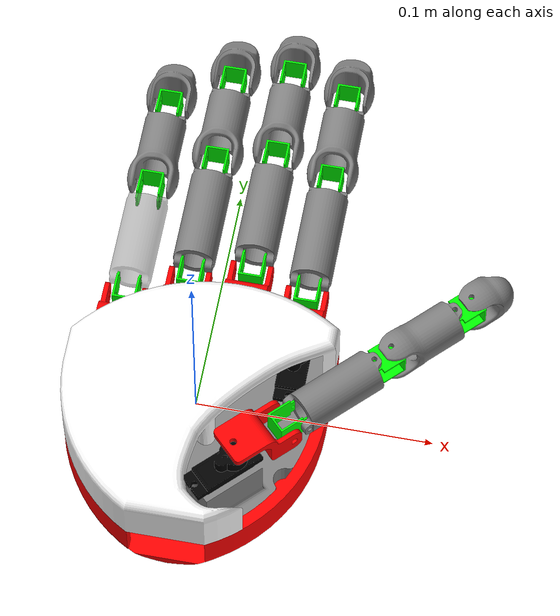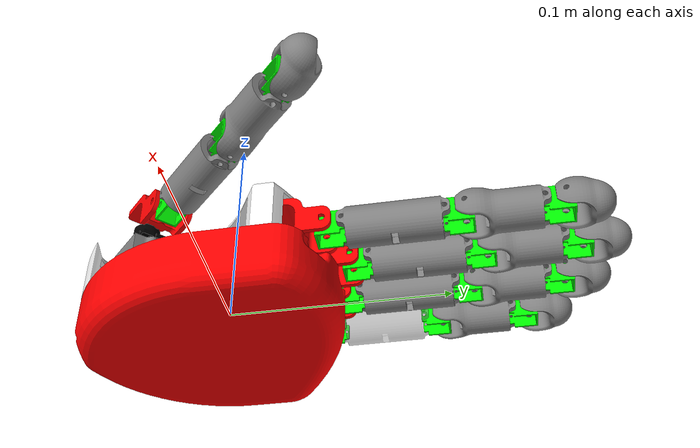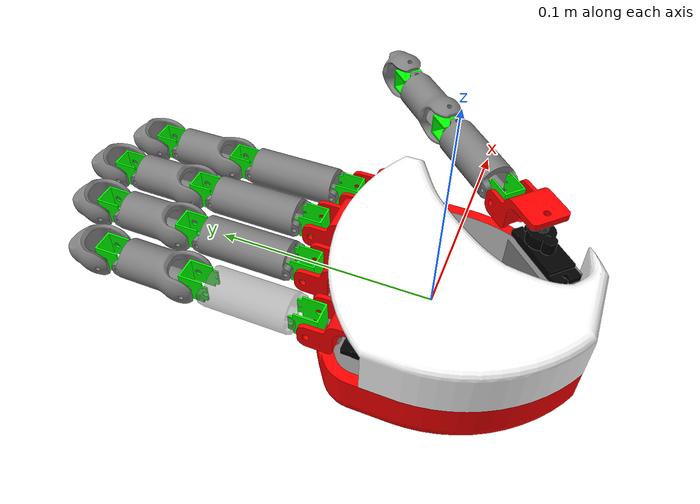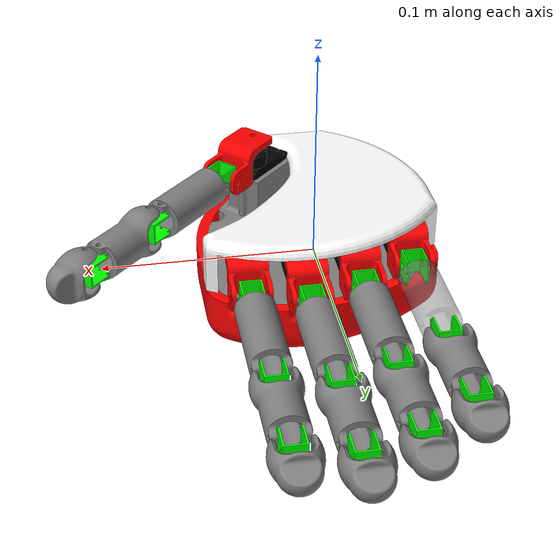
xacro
<?xml version="1.0"?>
<robot xmlns:xacro="http://www.ros.org/wiki/xacro" name="hands_one">
    <xacro:arg name="initial_positions_file" default="initial_positions.yaml" />

    <!-- Import hands_one urdf file -->
    <xacro:include filename="$(find hands_one)/urdf/hands_one.urdf" />

    <!-- Import control_xacro -->
    <xacro:include filename="hands_one.ros2_control.xacro" />

    <xacro:hands_one_ros2_control name="FakeSystem" initial_positions_file="$(arg initial_positions_file)"/>

</robot>

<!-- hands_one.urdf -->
<robot name="hands_one">

  <link name="base_link"/>

  <joint name="base_fixed" type="fixed">
    <parent link="base_link"/>
    <child link="PalmMid_link"/>
  </joint>

  <!-- Palm Mid link -->
  <link name="PalmMid_link">
    <visual>
      <geometry>
        <mesh filename="package://hands_one/meshes/PalmMidUpdated.stl" scale="0.001 0.001 0.001"/>
      </geometry>
      <material name="gray">
        <color rgba="0.5 0.5 0.5 1"/>
      </material>
    </visual>

    <collision>
      <geometry>
        <mesh filename="package://hands_one/meshes/PalmMidUpdated.stl" scale="0.001 0.001 0.001"/>
      </geometry>
    </collision>

    <inertial>
      <mass value="0.5"/>
      <origin xyz="0 0 0" rpy="0 0 0"/>
      <inertia ixx="0.001" ixy="0" ixz="0" iyy="0.001" iyz="0" izz="0.001"/>
    </inertial>
  </link>

  <gazebo reference="PalmMid_link">
    <material>Gazebo/Gray</material>
    <gravity>false</gravity>
  </gazebo>

  <!-- Palm Back link -->
  <link name="PalmBackCover_link">
    <visual>
      <geometry>
        <mesh filename="package://hands_one/meshes/PalmBackCoverUpdated.stl" scale="0.001 0.001 0.001"/>
      </geometry>
      <material name="red">
        <color rgba="1 0 0 1"/>
      </material>
    </visual>
    <collision>
      <geometry>
        <mesh filename="package://hands_one/meshes/PalmBackCoverUpdated.stl" scale="0.001 0.001 0.001"/>
      </geometry>
    </collision>
    <inertial>
      <mass value="0.1"/>
      <origin xyz="0 0 0" rpy="0 0 0"/>
      <inertia ixx="0.0001" ixy="0" ixz="0" iyy="0.0001" iyz="0" izz="0.0001"/>
    </inertial>
  </link>

  <!-- Palm Front link -->
  <link name="PalmFrontCover_link">
    <visual>
      <geometry>
        <mesh filename="package://hands_one/meshes/PalmFrontCover.stl" scale="0.001 0.001 0.001"/>
      </geometry>
      <material name="white">
        <color rgba="1 1 1 1"/>
      </material>
    </visual>
    <collision>
      <geometry>
        <mesh filename="package://hands_one/meshes/PalmFrontCover.stl" scale="0.001 0.001 0.001"/>
      </geometry>
    </collision>
    <inertial>
      <mass value="0.1"/>
      <origin xyz="0 0 0" rpy="0 0 0"/>
      <inertia ixx="0.0001" ixy="0" ixz="0" iyy="0.0001" iyz="0" izz="0.0001"/>
    </inertial>
  </link>

  <!-- Joint connecting PalmBackCover to PalmMid -->
  <joint name="PalmBack_joint" type="fixed">
    <parent link="PalmMid_link"/>
    <child link="PalmBackCover_link"/>
    <origin xyz="0 -0.0050 -0.0075" rpy="0 0 0"/>
  </joint>

  <!-- Joint connecting PalmFrontCover to PalmMid -->
  <joint name="PalmFront_joint" type="fixed">
    <parent link="PalmMid_link"/>
    <child link="PalmFrontCover_link"/>
    <origin xyz="0 -0.0050 0.0175" rpy="0 0 0"/>
  </joint>

  <!-- Little Finger Servo -->
  <link name="LittleServo_link">
    <visual>
      <geometry>
        <mesh filename="package://hands_one/meshes/servo.stl" scale="0.001 0.001 0.001"/>
      </geometry>
      <material name="black">
        <color rgba="0 0 0 1"/>
      </material>
    </visual>
    <collision>
      <geometry>
        <mesh filename="package://hands_one/meshes/servo.stl" scale="0.001 0.001 0.001"/>
      </geometry>
    </collision>
    <inertial>
      <mass value="0.1"/>
      <origin xyz="0 0 0" rpy="0 0 0"/>
      <inertia ixx="0.0001" ixy="0" ixz="0" iyy="0.0001" iyz="0" izz="0.0001"/>
    </inertial>
  </link>

  <!-- Ring Finger Servo -->
  <link name="RingServo_link">
    <visual>
      <geometry>
        <mesh filename="package://hands_one/meshes/servo.stl" scale="0.001 0.001 0.001"/>
      </geometry>
      <material name="black">
        <color rgba="0 0 0 1"/>
      </material>
    </visual>
    <collision>
      <geometry>
        <mesh filename="package://hands_one/meshes/servo.stl" scale="0.001 0.001 0.001"/>
      </geometry>
    </collision>
    <inertial>
      <mass value="0.1"/>
      <origin xyz="0 0 0" rpy="0 0 0"/>
      <inertia ixx="0.0001" ixy="0" ixz="0" iyy="0.0001" iyz="0" izz="0.0001"/>
    </inertial>
  </link>

  <!-- Middle Finger Servo -->
  <link name="MiddleServo_link">
    <visual>
      <geometry>
        <mesh filename="package://hands_one/meshes/servo.stl" scale="0.001 0.001 0.001"/>
      </geometry>
      <material name="black">
        <color rgba="0 0 0 1"/>
      </material>
    </visual>
    <collision>
      <geometry>
        <mesh filename="package://hands_one/meshes/servo.stl" scale="0.001 0.001 0.001"/>
      </geometry>
    </collision>
    <inertial>
      <mass value="0.1"/>
      <origin xyz="0 0 0" rpy="0 0 0"/>
      <inertia ixx="0.0001" ixy="0" ixz="0" iyy="0.0001" iyz="0" izz="0.0001"/>
    </inertial>
  </link>

  <!-- Index Finger Servo -->
  <link name="IndexServo_link">
    <visual>
      <geometry>
        <mesh filename="package://hands_one/meshes/servo.stl" scale="0.001 0.001 0.001"/>
      </geometry>
      <material name="black">
        <color rgba="0 0 0 1"/>
      </material>
    </visual>
    <collision>
      <geometry>
        <mesh filename="package://hands_one/meshes/servo.stl" scale="0.001 0.001 0.001"/>
      </geometry>
    </collision>
    <inertial>
      <mass value="0.1"/>
      <origin xyz="0 0 0" rpy="0 0 0"/>
      <inertia ixx="0.0001" ixy="0" ixz="0" iyy="0.0001" iyz="0" izz="0.0001"/>
    </inertial>
  </link>

  <!-- Thumb Servo -->
  <link name="ThumbServo_link">
    <visual>
      <geometry>
        <mesh filename="package://hands_one/meshes/servo.stl" scale="0.001 0.001 0.001"/>
      </geometry>
      <material name="black">
        <color rgba="0 0 0 1"/>
      </material>
    </visual>
    <collision>
      <geometry>
        <mesh filename="package://hands_one/meshes/servo.stl" scale="0.001 0.001 0.001"/>
      </geometry>
    </collision>
    <inertial>
      <mass value="0.1"/>
      <origin xyz="0 0 0" rpy="0 0 0"/>
      <inertia ixx="0.0001" ixy="0" ixz="0" iyy="0.0001" iyz="0" izz="0.0001"/>
    </inertial>
  </link>

  <!-- Joint connecting LittleFingerServo to PalmMid -->
  <joint name="LittleServo_joint" type="fixed">
    <parent link="PalmMid_link"/>
    <child link="LittleServo_link"/>
    <origin xyz="-0.0375 0.00875 -0.0020" rpy="1.5708 0 1.5708"/>
    <dynamics damping="0.1"/>
  </joint>

  <!-- Joint connecting RingFingerServo to PalmMid -->
  <joint name="RingServo_joint" type="fixed">
    <parent link="PalmMid_link"/>
    <child link="RingServo_link"/>
    <origin xyz="-0.0125 0.02125 -0.0020" rpy="1.5708 0 1.5708"/>
    <dynamics damping="0.1"/>
  </joint>

  <!-- Joint connecting MiddleFingerServo to PalmMid -->
  <joint name="MiddleServo_joint" type="fixed">
    <parent link="PalmMid_link"/>
    <child link="MiddleServo_link"/>
    <origin xyz="0.0125 0.02875 -0.0020" rpy="1.5708 0 1.5708"/>
    <dynamics damping="0.1"/>
  </joint>

  <!-- Joint connecting IndexFingerServo to PalmMid -->
  <joint name="IndexServo_joint" type="fixed">
    <parent link="PalmMid_link"/>
    <child link="IndexServo_link"/>
    <origin xyz="0.0375 0.02125 -0.0020" rpy="1.5708 0 1.5708"/>
    <dynamics damping="0.1"/>
  </joint>

  <!-- Joint connecting ThumbFingerServo to PalmMid -->
  <joint name="ThumbServo_joint" type="fixed">
    <parent link="PalmMid_link"/>
    <child link="ThumbServo_link"/>
    <origin xyz="0.01924 -0.03931 0.01795" rpy="1.5708 0 0.7854"/>
    <dynamics damping="0.1"/>
  </joint>

  <!-- Little Abduction Mechanism -->
  <link name="LittleMechanism_link">
    <visual>
      <origin xyz="0 0.0157 0" rpy="0 0 0"/>
      <geometry>
        <mesh filename="package://hands_one/meshes/AbductionMechanism.stl" scale="0.001 0.001 0.001"/>
      </geometry>
      <material name="red">
        <color rgba="1 0 0 1"/>
      </material>
    </visual>
    <collision>
      <geometry>
        <mesh filename="package://hands_one/meshes/AbductionMechanism.stl" scale="0.001 0.001 0.001"/>
      </geometry>
    </collision>
    <inertial>
      <mass value="0.1"/>
      <origin xyz="0 0 0" rpy="0 0 0"/>
      <inertia ixx="0.0001" ixy="0" ixz="0" iyy="0.0001" iyz="0" izz="0.0001"/>
    </inertial>
  </link>

  <!-- Joint connecting Little Abduction Mechanism to LittleFingerServo -->
  <joint name="LittleMechanism_joint" type="revolute">
    <parent link="LittleServo_link"/>
    <child link="LittleMechanism_link"/>
    <origin xyz="0.0054 0.0175 0" rpy="-1.5708 -1.5708 0"/>
    <axis xyz="0 0 1"/>
    <limit lower="-0.1" upper="0.52" effort="1" velocity="1"/>
    <dynamics damping="0.1"/>
  </joint>

  <!-- Ring Abduction Mechanism -->
  <link name="RingMechanism_link">
    <visual>
      <origin xyz="0 0.0157 0" rpy="0 0 0"/>
      <geometry>
        <mesh filename="package://hands_one/meshes/AbductionMechanism.stl" scale="0.001 0.001 0.001"/>
      </geometry>
      <material name="red">
        <color rgba="1 0 0 1"/>
      </material>
    </visual>
    <collision>
      <geometry>
        <mesh filename="package://hands_one/meshes/AbductionMechanism.stl" scale="0.001 0.001 0.001"/>
      </geometry>
    </collision>
    <inertial>
      <mass value="0.1"/>
      <origin xyz="0 0 0" rpy="0 0 0"/>
      <inertia ixx="0.0001" ixy="0" ixz="0" iyy="0.0001" iyz="0" izz="0.0001"/>
    </inertial>
  </link>

  <!-- Joint connecting Ring Abduction Mechanism to RingFingerServo -->
  <joint name="RingMechanism_joint" type="revolute">
    <parent link="RingServo_link"/>
    <child link="RingMechanism_link"/>
    <origin xyz="0.0054 0.0175 0" rpy="-1.5708 -1.5708 0"/>
    <axis xyz="0 0 1"/>
    <limit lower="-0.1" upper="0.35" effort="1" velocity="1"/>
    <dynamics damping="0.1"/>
  </joint>

  <!-- Middle Abduction Mechanism -->
  <link name="MiddleMechanism_link">
    <visual>
      <origin xyz="0 0.0157 0" rpy="0 0 0"/>
      <geometry>
        <mesh filename="package://hands_one/meshes/AbductionMechanism.stl" scale="0.001 0.001 0.001"/>
      </geometry>
      <material name="red">
        <color rgba="1 0 0 1"/>
      </material>
    </visual>
    <collision>
      <geometry>
        <mesh filename="package://hands_one/meshes/AbductionMechanism.stl" scale="0.001 0.001 0.001"/>
      </geometry>
    </collision>
    <inertial>
      <mass value="0.1"/>
      <origin xyz="0 0 0" rpy="0 0 0"/>
      <inertia ixx="0.0001" ixy="0" ixz="0" iyy="0.0001" iyz="0" izz="0.0001"/>
    </inertial>
  </link>

  <!-- Joint connecting Middle Abduction Mechanism to IndexFingerServo -->
  <joint name="MiddleMechanism_joint" type="revolute">
    <parent link="MiddleServo_link"/>
    <child link="MiddleMechanism_link"/>
    <origin xyz="0.0054 0.0175 0" rpy="-1.5708 -1.5708 0"/>
    <axis xyz="0 0 1"/>
    <limit lower="-0.2" upper="0.2" effort="1" velocity="1"/>
    <dynamics damping="0.1"/>
  </joint>

  <!-- Index Abduction Mechanism -->
  <link name="IndexMechanism_link">
    <visual>
      <origin xyz="0 0.0157 0" rpy="0 0 0"/>
      <geometry>
        <mesh filename="package://hands_one/meshes/AbductionMechanism.stl" scale="0.001 0.001 0.001"/>
      </geometry>
      <material name="red">
        <color rgba="1 0 0 1"/>
      </material>
    </visual>
    <collision>
      <geometry>
        <mesh filename="package://hands_one/meshes/AbductionMechanism.stl" scale="0.001 0.001 0.001"/>
      </geometry>
    </collision>
    <inertial>
      <mass value="0.1"/>
      <origin xyz="0 0 0" rpy="0 0 0"/>
      <inertia ixx="0.0001" ixy="0" ixz="0" iyy="0.0001" iyz="0" izz="0.0001"/>
    </inertial>
  </link>

  <!-- Joint connecting Index Abduction Mechanism to IndexFingerServo -->
  <joint name="IndexMechanism_joint" type="revolute">
    <parent link="IndexServo_link"/>
    <child link="IndexMechanism_link"/>
    <origin xyz="0.0054 0.0175 0" rpy="-1.5708 -1.5708 0"/>
    <axis xyz="0 0 1"/>
    <limit lower="-0.52" upper="0.1" effort="1" velocity="1"/>
    <dynamics damping="0.1"/>
  </joint>

  <!-- Thumb Abduction Mechanism -->
  <link name="ThumbMechanism_link">
    <visual>
      <origin xyz="0 0.0157 0" rpy="0 0 0"/>
      <geometry>
        <mesh filename="package://hands_one/meshes/AbductionMechanism.stl" scale="0.001 0.001 0.001"/>
      </geometry>
      <material name="red">
        <color rgba="1 0 0 1"/>
      </material>
    </visual>
    <collision>
      <geometry>
        <mesh filename="package://hands_one/meshes/AbductionMechanism.stl" scale="0.001 0.001 0.001"/>
      </geometry>
    </collision>
    <inertial>
      <mass value="0.1"/>
      <origin xyz="0 0 0" rpy="0 0 0"/>
      <inertia ixx="0.0001" ixy="0" ixz="0" iyy="0.0001" iyz="0" izz="0.0001"/>
    </inertial>
  </link>

  <!-- Joint connecting Thumb Abduction Mechanism to ThumbFingerServo -->
  <joint name="ThumbMechanism_joint" type="revolute">
    <parent link="ThumbServo_link"/>
    <child link="ThumbMechanism_link"/>
    <origin xyz="0.0054 0.0175 0" rpy="-1.5708 -1.5708 0"/>
    <axis xyz="0 0 1"/>
    <limit lower="-0.6" upper="1.1" effort="1" velocity="1"/>
    <dynamics damping="0.1"/>
  </joint>

  <!-- LittleProximal Gearbox -->
  <link name="Little_ProximalGearbox_link">
    <visual>
      <origin xyz="0 -0.003 0" rpy="0 0 0"/>
      <geometry>
        <mesh filename="package://hands_one/meshes/Gearbox1.stl" scale="0.001 0.001 0.001"/>
      </geometry>
      <material name="green">
        <color rgba="0 1 0 1"/>
      </material>
    </visual>
    <collision>
      <geometry>
        <mesh filename="package://hands_one/meshes/Gearbox1.stl" scale="0.001 0.001 0.001"/>
      </geometry>
    </collision>
    <inertial>
      <mass value="0.1"/>
      <origin xyz="0 0 0" rpy="0 0 0"/>
      <inertia ixx="0.0001" ixy="0" ixz="0" iyy="0.0001" iyz="0" izz="0.0001"/>
    </inertial>
  </link>

  <!-- Joint connecting Little Finger Gearbox to Little Finger Mechanism -->
  <joint name="Little_ProximalGearbox_joint" type="revolute">
    <parent link="LittleMechanism_link"/>
    <child link="Little_ProximalGearbox_link"/>
    <origin xyz="0 0.02375 -0.003" rpy="0 -1.57 -3.14159"/>
    <axis xyz="0 0 1"/>
    <limit lower="-0.3" upper="1.57" effort="1" velocity="1"/>
    <dynamics damping="0.1"/>
  </joint>

  <!-- RingProximal Gearbox -->
  <link name="Ring_ProximalGearbox_link">
    <visual>
      <origin xyz="0 -0.003 0" rpy="0 0 0"/>
      <geometry>
        <mesh filename="package://hands_one/meshes/Gearbox1.stl" scale="0.001 0.001 0.001"/>
      </geometry>
      <material name="green">
        <color rgba="0 1 0 1"/>
      </material>
    </visual>
    <collision>
      <geometry>
        <mesh filename="package://hands_one/meshes/Gearbox1.stl" scale="0.001 0.001 0.001"/>
      </geometry>
    </collision>
    <inertial>
      <mass value="0.1"/>
      <origin xyz="0 0 0" rpy="0 0 0"/>
      <inertia ixx="0.0001" ixy="0" ixz="0" iyy="0.0001" iyz="0" izz="0.0001"/>
    </inertial>
  </link>

  <!-- Joint connecting Ring Finger Gearbox to Ring Finger Mechanism -->
  <joint name="Ring_ProximalGearbox_joint" type="revolute">
    <parent link="RingMechanism_link"/>
    <child link="Ring_ProximalGearbox_link"/>
    <origin xyz="0 0.02375 -0.003" rpy="0 -1.57 -3.14159"/>
    <axis xyz="0 0 1"/>
    <limit lower="-0.3" upper="1.57" effort="1" velocity="1"/>
    <dynamics damping="0.1"/>
  </joint>

  <!-- MiddleProximal Gearbox -->
  <link name="Middle_ProximalGearbox_link">
    <visual>
      <origin xyz="0 -0.003 0" rpy="0 0 0"/>
      <geometry>
        <mesh filename="package://hands_one/meshes/Gearbox1.stl" scale="0.001 0.001 0.001"/>
      </geometry>
      <material name="green">
        <color rgba="0 1 0 1"/>
      </material>
    </visual>
    <collision>
      <geometry>
        <mesh filename="package://hands_one/meshes/Gearbox1.stl" scale="0.001 0.001 0.001"/>
      </geometry>
    </collision>
    <inertial>
      <mass value="0.1"/>
      <origin xyz="0 0 0" rpy="0 0 0"/>
      <inertia ixx="0.0001" ixy="0" ixz="0" iyy="0.0001" iyz="0" izz="0.0001"/>
    </inertial>
  </link>

  <!-- Joint connecting Middle Finger Gearbox to Middle Finger Mechanism -->
  <joint name="Middle_ProximalGearbox_joint" type="revolute">
    <parent link="MiddleMechanism_link"/>
    <child link="Middle_ProximalGearbox_link"/>
    <origin xyz="0 0.02375 -0.003" rpy="0 -1.57 -3.14159"/>
    <axis xyz="0 0 1"/>
    <limit lower="-0.3" upper="1.57" effort="1" velocity="1"/>
    <dynamics damping="0.1"/>
  </joint>

  <!-- IndexProximal Gearbox -->
  <link name="Index_ProximalGearbox_link">
    <visual>
      <origin xyz="0 -0.003 0" rpy="0 0 0"/>
      <geometry>
        <mesh filename="package://hands_one/meshes/Gearbox1.stl" scale="0.001 0.001 0.001"/>
      </geometry>
      <material name="green">
        <color rgba="0 1 0 1"/>
      </material>
    </visual>
    <collision>
      <geometry>
        <mesh filename="package://hands_one/meshes/Gearbox1.stl" scale="0.001 0.001 0.001"/>
      </geometry>
    </collision>
    <inertial>
      <mass value="0.1"/>
      <origin xyz="0 0 0" rpy="0 0 0"/>
      <inertia ixx="0.0001" ixy="0" ixz="0" iyy="0.0001" iyz="0" izz="0.0001"/>
    </inertial>
  </link>

  <!-- Joint connecting Index Finger Gearbox to Index Finger Mechanism -->
  <joint name="Index_ProximalGearbox_joint" type="revolute">
    <parent link="IndexMechanism_link"/>
    <child link="Index_ProximalGearbox_link"/>
    <origin xyz="0 0.02375 -0.003" rpy="0 -1.57 -3.14159"/>
    <axis xyz="0 0 1"/>
    <limit lower="-0.3" upper="1.57" effort="1" velocity="1"/>
    <dynamics damping="0.1"/>
  </joint>

  <!-- ThumbProximal Gearbox -->
  <link name="Thumb_ProximalGearbox_link">
    <visual>
      <origin xyz="0 -0.003 0" rpy="0 0 0"/>
      <geometry>
        <mesh filename="package://hands_one/meshes/Gearbox1.stl" scale="0.001 0.001 0.001"/>
      </geometry>
      <material name="green">
        <color rgba="0 1 0 1"/>
      </material>
    </visual>
    <collision>
      <geometry>
        <mesh filename="package://hands_one/meshes/Gearbox1.stl" scale="0.001 0.001 0.001"/>
      </geometry>
    </collision>
    <inertial>
      <mass value="0.1"/>
      <origin xyz="0 0 0" rpy="0 0 0"/>
      <inertia ixx="0.0001" ixy="0" ixz="0" iyy="0.0001" iyz="0" izz="0.0001"/>
    </inertial>
  </link>

  <!-- Joint connecting Thumb Finger Gearbox to Thumb Finger Mechanism -->
  <joint name="Thumb_ProximalGearbox_joint" type="revolute">
    <parent link="ThumbMechanism_link"/>
    <child link="Thumb_ProximalGearbox_link"/>
    <origin xyz="0 0.02375 -0.003" rpy="0 -1.57 -3.14159"/>
    <axis xyz="0 0 1"/>
    <limit lower="-1.0" upper="1.57" effort="1" velocity="1"/>
    <dynamics damping="0.1"/>
  </joint>

  <!-- Little Proximal Link -->
  <link name="Little_Proximal_link">
    <visual>
      <geometry>
        <mesh filename="package://hands_one/meshes/LittleProximalUpdated.stl" scale="0.001 0.001 0.001"/>
      </geometry>
      <material name="gray">
        <color rgba="0.5 0.5 0.5 0.5"/>
      </material>
    </visual>
    <collision>
      <geometry>
        <mesh filename="package://hands_one/meshes/LittleProximalUpdated.stl" scale="0.001 0.001 0.001"/>
      </geometry>
    </collision>
    <inertial>
      <mass value="0.1"/>
      <origin xyz="0 0 0" rpy="0 0 0"/>
      <inertia ixx="0.0001" ixy="0" ixz="0" iyy="0.0001" iyz="0" izz="0.0001"/>
    </inertial>
  </link>

  <!-- Joint connecting Little Finger Proximal Link to Little Finger Gearbox -->
  <joint name="Little_Proximal_joint" type="fixed">
    <parent link="Little_ProximalGearbox_link"/>
    <child link="Little_Proximal_link"/>
    <origin xyz="0 -0.0276 0" rpy="0 1.5708 0"/>
  </joint>

  <!-- Ring Proximal Link -->
  <link name="Ring_Proximal_link">
    <visual>
      <geometry>
        <mesh filename="package://hands_one/meshes/IndexProximalUpdated.stl" scale="0.001 0.001 0.001"/>
      </geometry>
      <material name="gray">
        <color rgba="0.5 0.5 0.5 1"/>
      </material>
    </visual>
    <collision>
      <geometry>
        <mesh filename="package://hands_one/meshes/IndexProximalUpdated.stl" scale="0.001 0.001 0.001"/>
      </geometry>
    </collision>
    <inertial>
      <mass value="0.1"/>
      <origin xyz="0 0 0" rpy="0 0 0"/>
      <inertia ixx="0.0001" ixy="0" ixz="0" iyy="0.0001" iyz="0" izz="0.0001"/>
    </inertial>
  </link>

  <!-- Joint connecting Ring Finger Proximal Link to Ring Finger Gearbox -->
  <joint name="Ring_Proximal_joint" type="fixed">
    <parent link="Ring_ProximalGearbox_link"/>
    <child link="Ring_Proximal_link"/>
    <origin xyz="0 -0.0296 0" rpy="0 1.5708 0"/>
  </joint>

  <!-- Middle Proximal Link -->
  <link name="Middle_Proximal_link">
    <visual>
      <geometry>
        <mesh filename="package://hands_one/meshes/IndexProximalUpdated.stl" scale="0.001 0.001 0.001"/>
      </geometry>
      <material name="gray">
        <color rgba="0.5 0.5 0.5 1"/>
      </material>
    </visual>
    <collision>
      <geometry>
        <mesh filename="package://hands_one/meshes/IndexProximalUpdated.stl" scale="0.001 0.001 0.001"/>
      </geometry>
    </collision>
    <inertial>
      <mass value="0.1"/>
      <origin xyz="0 0 0" rpy="0 0 0"/>
      <inertia ixx="0.0001" ixy="0" ixz="0" iyy="0.0001" iyz="0" izz="0.0001"/>
    </inertial>
  </link>

  <!-- Joint connecting Middle Finger Proximal Link to Middle Finger Gearbox -->
  <joint name="Middle_Proximal_joint" type="fixed">
    <parent link="Middle_ProximalGearbox_link"/>
    <child link="Middle_Proximal_link"/>
    <origin xyz="0 -0.0296 0" rpy="0 1.5708 0"/>
  </joint>

  <!-- Index Proximal Link -->
  <link name="Index_Proximal_link">
    <visual>
      <geometry>
        <mesh filename="package://hands_one/meshes/IndexProximalUpdated.stl" scale="0.001 0.001 0.001"/>
      </geometry>
      <material name="gray">
        <color rgba="0.5 0.5 0.5 1"/>
      </material>
    </visual>
    <collision>
      <geometry>
        <mesh filename="package://hands_one/meshes/IndexProximalUpdated.stl" scale="0.001 0.001 0.001"/>
      </geometry>
    </collision>
    <inertial>
      <mass value="0.1"/>
      <origin xyz="0 0 0" rpy="0 0 0"/>
      <inertia ixx="0.0001" ixy="0" ixz="0" iyy="0.0001" iyz="0" izz="0.0001"/>
    </inertial>
  </link>

  <!-- Joint connecting Index Finger Proximal Link to Index Finger Gearbox -->
  <joint name="Index_Proximal_joint" type="fixed">
    <parent link="Index_ProximalGearbox_link"/>
    <child link="Index_Proximal_link"/>
    <origin xyz="0 -0.0296 0" rpy="0 1.5708 0"/>
  </joint>

  <!-- Thumb Proximal Link -->
  <link name="Thumb_Proximal_link">
    <visual>
      <geometry>
        <mesh filename="package://hands_one/meshes/ThumbProximal.stl" scale="0.001 0.001 0.001"/>
      </geometry>
      <material name="gray">
        <color rgba="0.5 0.5 0.5 1"/>
      </material>
    </visual>
    <collision>
      <geometry>
        <mesh filename="package://hands_one/meshes/ThumbProximal.stl" scale="0.001 0.001 0.001"/>
      </geometry>
    </collision>
    <inertial>
      <mass value="0.1"/>
      <origin xyz="0 0 0" rpy="0 0 0"/>
      <inertia ixx="0.0001" ixy="0" ixz="0" iyy="0.0001" iyz="0" izz="0.0001"/>
    </inertial>
  </link>

  <!-- Joint connecting Thumb Finger Proximal Link to Thumb Finger Gearbox -->
  <joint name="Thumb_Proximal_joint" type="fixed">
    <parent link="Thumb_ProximalGearbox_link"/>
    <child link="Thumb_Proximal_link"/>
    <origin xyz="0 -0.0271 0" rpy="0 1.5708 0"/>
  </joint>

  <!-- Little Middle Gearbox -->
  <link name="Little_MiddleGearbox_link">
    <visual>
      <geometry>
        <mesh filename="package://hands_one/meshes/Gearbox1.stl" scale="0.001 0.001 0.001"/>
      </geometry>
      <material name="green">
        <color rgba="0 1 0 1"/>
      </material>
    </visual>
    <collision>
      <geometry>
        <mesh filename="package://hands_one/meshes/Gearbox1.stl" scale="0.001 0.001 0.001"/>
      </geometry>
    </collision>
    <inertial>
      <mass value="0.1"/>
      <origin xyz="0 0 0" rpy="0 0 0"/>
      <inertia ixx="0.0001" ixy="0" ixz="0" iyy="0.0001" iyz="0" izz="0.0001"/>
    </inertial>
  </link>

  <!-- Joint connecting Little Finger Proximal Link to Little Finger Gearbox -->
  <joint name="Little_MiddleGearbox_joint" type="fixed">
    <parent link="Little_Proximal_link"/>
    <child link="Little_MiddleGearbox_link"/>
    <origin xyz="0 -0.0246 0" rpy="3.14159 -1.5708 0"/>
  </joint>

  <!-- Ring Middle Gearbox -->
  <link name="Ring_MiddleGearbox_link">
    <visual>
      <geometry>
        <mesh filename="package://hands_one/meshes/Gearbox1.stl" scale="0.001 0.001 0.001"/>
      </geometry>
      <material name="green">
        <color rgba="0 1 0 1"/>
      </material>
    </visual>
    <collision>
      <geometry>
        <mesh filename="package://hands_one/meshes/Gearbox1.stl" scale="0.001 0.001 0.001"/>
      </geometry>
    </collision>
    <inertial>
      <mass value="0.1"/>
      <origin xyz="0 0 0" rpy="0 0 0"/>
      <inertia ixx="0.0001" ixy="0" ixz="0" iyy="0.0001" iyz="0" izz="0.0001"/>
    </inertial>
  </link>

  <!-- Joint connecting Ring Finger Proximal Link to Ring Finger Gearbox -->
  <joint name="Ring_MiddleGearbox_joint" type="fixed">
    <parent link="Ring_Proximal_link"/>
    <child link="Ring_MiddleGearbox_link"/>
    <origin xyz="0 -0.0266 0" rpy="3.14159 -1.5708 0"/>
  </joint>

  <!-- Middle Middle Gearbox -->
  <link name="Middle_MiddleGearbox_link">
    <visual>
      <geometry>
        <mesh filename="package://hands_one/meshes/Gearbox1.stl" scale="0.001 0.001 0.001"/>
      </geometry>
      <material name="green">
        <color rgba="0 1 0 1"/>
      </material>
    </visual>
    <collision>
      <geometry>
        <mesh filename="package://hands_one/meshes/Gearbox1.stl" scale="0.001 0.001 0.001"/>
      </geometry>
    </collision>
    <inertial>
      <mass value="0.1"/>
      <origin xyz="0 0 0" rpy="0 0 0"/>
      <inertia ixx="0.0001" ixy="0" ixz="0" iyy="0.0001" iyz="0" izz="0.0001"/>
    </inertial>
  </link>

  <!-- Joint connecting Middle Finger Proximal Link to Middle Finger Gearbox -->
  <joint name="Middle_MiddleGearbox_joint" type="fixed">
    <parent link="Middle_Proximal_link"/>
    <child link="Middle_MiddleGearbox_link"/>
    <origin xyz="0 -0.0266 0" rpy="3.14159 -1.5708 0"/>
  </joint>

  <!-- Index Middle Gearbox -->
  <link name="Index_MiddleGearbox_link">
    <visual>
      <geometry>
        <mesh filename="package://hands_one/meshes/Gearbox1.stl" scale="0.001 0.001 0.001"/>
      </geometry>
      <material name="green">
        <color rgba="0 1 0 1"/>
      </material>
    </visual>
    <collision>
      <geometry>
        <mesh filename="package://hands_one/meshes/Gearbox1.stl" scale="0.001 0.001 0.001"/>
      </geometry>
    </collision>
    <inertial>
      <mass value="0.1"/>
      <origin xyz="0 0 0" rpy="0 0 0"/>
      <inertia ixx="0.0001" ixy="0" ixz="0" iyy="0.0001" iyz="0" izz="0.0001"/>
    </inertial>
  </link>

  <!-- Joint connecting Index Finger Proximal Link to Index Finger Gearbox -->
  <joint name="Index_MiddleGearbox_joint" type="fixed">
    <parent link="Index_Proximal_link"/>
    <child link="Index_MiddleGearbox_link"/>
    <origin xyz="0 -0.0266 0" rpy="3.14159 -1.5708 0"/>
  </joint>

  <!-- Thumb Middle Gearbox -->
  <link name="Thumb_MiddleGearbox_link">
    <visual>
      <geometry>
        <mesh filename="package://hands_one/meshes/Gearbox1.stl" scale="0.001 0.001 0.001"/>
      </geometry>
      <material name="green">
        <color rgba="0 1 0 1"/>
      </material>
    </visual>
    <collision>
      <geometry>
        <mesh filename="package://hands_one/meshes/Gearbox1.stl" scale="0.001 0.001 0.001"/>
      </geometry>
    </collision>
    <inertial>
      <mass value="0.1"/>
      <origin xyz="0 0 0" rpy="0 0 0"/>
      <inertia ixx="0.0001" ixy="0" ixz="0" iyy="0.0001" iyz="0" izz="0.0001"/>
    </inertial>
  </link>

  <!-- Joint connecting Thumb Finger Proximal Link to Thumb Finger Gearbox -->
  <joint name="Thumb_MiddleGearbox_joint" type="fixed">
    <parent link="Thumb_Proximal_link"/>
    <child link="Thumb_MiddleGearbox_link"/>
    <origin xyz="0 -0.0241 0" rpy="3.14159 0 0"/>
  </joint>

  <!-- LittleMiddle Link -->
  <link name="Little_Middle_link">
    <visual>
      <origin xyz="0 0.0135 0" rpy="0 0 0"/>
      <geometry>
        <mesh filename="package://hands_one/meshes/IndexMiddleUpdated.stl" scale="0.001 0.001 0.001"/>
      </geometry>
      <material name="gray">
        <color rgba="0.5 0.5 0.5 1"/>
      </material>
    </visual>
    <collision>
      <geometry>
        <mesh filename="package://hands_one/meshes/IndexMiddleUpdated.stl" scale="0.001 0.001 0.001"/>
      </geometry>
    </collision>
    <inertial>
      <mass value="0.1"/>
      <origin xyz="0 0 0" rpy="0 0 0"/>
      <inertia ixx="0.0001" ixy="0" ixz="0" iyy="0.0001" iyz="0" izz="0.0001"/>
    </inertial>
  </link>

  <!-- Joint connecting Little Finger Middle Gearbox to Little Finger Middle Link -->
  <joint name="Little_Middle_joint" type="revolute">
    <parent link="Little_MiddleGearbox_link"/>
    <child link="Little_Middle_link"/>
    <origin xyz="0 0.003 0" rpy="0 1.57 0"/>
    <axis xyz="1 0 0"/>
    <limit lower="0" upper="1.57" effort="1" velocity="1"/>
    <dynamics damping="0.1"/>
  </joint>

  <!-- RingMiddle Link -->
  <link name="Ring_Middle_link">
    <visual>
      <origin xyz="0 0.0135 0" rpy="0 0 0"/>
      <geometry>
        <mesh filename="package://hands_one/meshes/IndexMiddleUpdated.stl" scale="0.001 0.001 0.001"/>
      </geometry>
      <material name="gray">
        <color rgba="0.5 0.5 0.5 1"/>
      </material>
    </visual>
    <collision>
      <geometry>
        <mesh filename="package://hands_one/meshes/IndexMiddleUpdated.stl" scale="0.001 0.001 0.001"/>
      </geometry>
    </collision>
    <inertial>
      <mass value="0.1"/>
      <origin xyz="0 0 0" rpy="0 0 0"/>
      <inertia ixx="0.0001" ixy="0" ixz="0" iyy="0.0001" iyz="0" izz="0.0001"/>
    </inertial>
  </link>

  <!-- Joint connecting Ring Finger Middle Gearbox to Ring Finger Middle Link -->
  <joint name="Ring_Middle_joint" type="revolute">
    <parent link="Ring_MiddleGearbox_link"/>
    <child link="Ring_Middle_link"/>
    <origin xyz="0 0.003 0" rpy="0 1.57 0"/>
    <axis xyz="1 0 0"/>
    <limit lower="0" upper="1.57" effort="1" velocity="1"/>
    <dynamics damping="0.1"/>
  </joint>

  <!-- MiddleMiddle Link -->
  <link name="Middle_Middle_link">
    <visual>
      <origin xyz="0 0.0135 0" rpy="0 0 0"/>
      <geometry>
        <mesh filename="package://hands_one/meshes/IndexMiddleUpdated.stl" scale="0.001 0.001 0.001"/>
      </geometry>
      <material name="gray">
        <color rgba="0.5 0.5 0.5 1"/>
      </material>
    </visual>
    <collision>
      <geometry>
        <mesh filename="package://hands_one/meshes/IndexMiddleUpdated.stl" scale="0.001 0.001 0.001"/>
      </geometry>
    </collision>
    <inertial>
      <mass value="0.1"/>
      <origin xyz="0 0 0" rpy="0 0 0"/>
      <inertia ixx="0.0001" ixy="0" ixz="0" iyy="0.0001" iyz="0" izz="0.0001"/>
    </inertial>
  </link>

  <!-- Joint connecting Middle Finger Middle Gearbox to Middle Finger Middle Link -->
  <joint name="Middle_Middle_joint" type="revolute">
    <parent link="Middle_MiddleGearbox_link"/>
    <child link="Middle_Middle_link"/>
    <origin xyz="0 0.003 0" rpy="0 1.57 0"/>
    <axis xyz="1 0 0"/>
    <limit lower="0" upper="1.57" effort="1" velocity="1"/>
    <dynamics damping="0.1"/>
  </joint>

  <!-- IndexMiddle Link -->
  <link name="Index_Middle_link">
    <visual>
      <origin xyz="0 0.0135 0" rpy="0 0 0"/>
      <geometry>
        <mesh filename="package://hands_one/meshes/IndexMiddleUpdated.stl" scale="0.001 0.001 0.001"/>
      </geometry>
      <material name="gray">
        <color rgba="0.5 0.5 0.5 1"/>
      </material>
    </visual>
    <collision>
      <geometry>
        <mesh filename="package://hands_one/meshes/IndexMiddleUpdated.stl" scale="0.001 0.001 0.001"/>
      </geometry>
    </collision>
    <inertial>
      <mass value="0.1"/>
      <origin xyz="0 0 0" rpy="0 0 0"/>
      <inertia ixx="0.0001" ixy="0" ixz="0" iyy="0.0001" iyz="0" izz="0.0001"/>
    </inertial>
  </link>

  <!-- Joint connecting Index Finger Middle Gearbox to Index Finger Middle Link -->
  <joint name="Index_Middle_joint" type="revolute">
    <parent link="Index_MiddleGearbox_link"/>
    <child link="Index_Middle_link"/>
    <origin xyz="0 0.003 0" rpy="0 1.57 0"/>
    <axis xyz="1 0 0"/>
    <limit lower="0" upper="1.57" effort="1" velocity="1"/>
    <dynamics damping="0.1"/>
  </joint>

  <link name="Thumb_Middle_link">
    <visual>
      <origin xyz="0 0.0135 0" rpy="0 0 0"/>
      <geometry>
        <mesh filename="package://hands_one/meshes/IndexMiddleUpdated.stl" scale="0.001 0.001 0.001"/>
      </geometry>
      <material name="gray">
        <color rgba="0.5 0.5 0.5 1"/>
      </material>
    </visual>
    <collision>
      <geometry>
        <mesh filename="package://hands_one/meshes/IndexMiddleUpdated.stl" scale="0.001 0.001 0.001"/>
      </geometry>
    </collision>
    <inertial>
      <mass value="0.1"/>
      <origin xyz="0 0 0" rpy="0 0 0"/>
      <inertia ixx="0.0001" ixy="0" ixz="0" iyy="0.0001" iyz="0" izz="0.0001"/>
    </inertial>
  </link>

  <!-- Joint connecting Thumb Finger Middle Gearbox to Thumb Finger Middle Link -->
  <joint name="Thumb_Middle_joint" type="revolute">
    <parent link="Thumb_MiddleGearbox_link"/>
    <child link="Thumb_Middle_link"/>
    <origin xyz="0 0.003 0" rpy="0 1.57 0"/>
    <axis xyz="1 0 0"/>
    <limit lower="0" upper="1.57" effort="1" velocity="1"/>
    <dynamics damping="0.1"/>
  </joint>

  <!-- Little Distal Gearbox -->
  <link name="Little_DistalGearbox_link">
    <visual>
      <geometry>
        <mesh filename="package://hands_one/meshes/Gearbox1.stl" scale="0.001 0.001 0.001"/>
      </geometry>
      <material name="green">
        <color rgba="0 1 0 1"/>
      </material>
    </visual>
    <collision>
      <geometry>
        <mesh filename="package://hands_one/meshes/Gearbox1.stl" scale="0.001 0.001 0.001"/>
      </geometry>
    </collision>
    <inertial>
      <mass value="0.1"/>
      <origin xyz="0 0 0" rpy="0 0 0"/>
      <inertia ixx="0.0001" ixy="0" ixz="0" iyy="0.0001" iyz="0" izz="0.0001"/>
    </inertial>
  </link>

  <!-- Joint connecting Little Finger Proximal Link to Little Finger Gearbox -->
  <joint name="Little_DistalGearbox_joint" type="fixed">
    <parent link="Little_Middle_link"/>
    <child link="Little_DistalGearbox_link"/>
    <origin xyz="0 0.0376 0" rpy="0 1.5708 0"/>
  </joint>

  <!-- Ring Distal Gearbox -->
  <link name="Ring_DistalGearbox_link">
    <visual>
      <geometry>
        <mesh filename="package://hands_one/meshes/Gearbox1.stl" scale="0.001 0.001 0.001"/>
      </geometry>
      <material name="green">
        <color rgba="0 1 0 1"/>
      </material>
    </visual>
    <collision>
      <geometry>
        <mesh filename="package://hands_one/meshes/Gearbox1.stl" scale="0.001 0.001 0.001"/>
      </geometry>
    </collision>
    <inertial>
      <mass value="0.1"/>
      <origin xyz="0 0 0" rpy="0 0 0"/>
      <inertia ixx="0.0001" ixy="0" ixz="0" iyy="0.0001" iyz="0" izz="0.0001"/>
    </inertial>
  </link>

  <!-- Joint connecting Ring Finger Proximal Link to Little Ring Gearbox -->
  <joint name="Ring_DistalGearbox_joint" type="fixed">
    <parent link="Ring_Middle_link"/>
    <child link="Ring_DistalGearbox_link"/>
    <origin xyz="0 0.0376 0" rpy="0 1.5708 0"/>
  </joint>

  <!-- Middle Distal Gearbox -->
  <link name="Middle_DistalGearbox_link">
    <visual>
      <geometry>
        <mesh filename="package://hands_one/meshes/Gearbox1.stl" scale="0.001 0.001 0.001"/>
      </geometry>
      <material name="green">
        <color rgba="0 1 0 1"/>
      </material>
    </visual>
    <collision>
      <geometry>
        <mesh filename="package://hands_one/meshes/Gearbox1.stl" scale="0.001 0.001 0.001"/>
      </geometry>
    </collision>
    <inertial>
      <mass value="0.1"/>
      <origin xyz="0 0 0" rpy="0 0 0"/>
      <inertia ixx="0.0001" ixy="0" ixz="0" iyy="0.0001" iyz="0" izz="0.0001"/>
    </inertial>
  </link>

  <!-- Joint connecting Middle Finger Proximal Link to Middle Finger Gearbox -->
  <joint name="Middle_DistalGearbox_joint" type="fixed">
    <parent link="Middle_Middle_link"/>
    <child link="Middle_DistalGearbox_link"/>
    <origin xyz="0 0.0376 0" rpy="0 1.5708 0"/>
  </joint>

  <!-- Index Distal Gearbox -->
  <link name="Index_DistalGearbox_link">
    <visual>
      <geometry>
        <mesh filename="package://hands_one/meshes/Gearbox1.stl" scale="0.001 0.001 0.001"/>
      </geometry>
      <material name="green">
        <color rgba="0 1 0 1"/>
      </material>
    </visual>
    <collision>
      <geometry>
        <mesh filename="package://hands_one/meshes/Gearbox1.stl" scale="0.001 0.001 0.001"/>
      </geometry>
    </collision>
    <inertial>
      <mass value="0.1"/>
      <origin xyz="0 0 0" rpy="0 0 0"/>
      <inertia ixx="0.0001" ixy="0" ixz="0" iyy="0.0001" iyz="0" izz="0.0001"/>
    </inertial>
  </link>

  <!-- Joint connecting Index Finger Proximal Link to Index Finger Gearbox -->
  <joint name="Index_DistalGearbox_joint" type="fixed">
    <parent link="Index_Middle_link"/>
    <child link="Index_DistalGearbox_link"/>
    <origin xyz="0 0.0376 0" rpy="0 1.5708 0"/>
  </joint>

  <!-- Thumb Distal Gearbox -->
  <link name="Thumb_DistalGearbox_link">
    <visual>
      <geometry>
        <mesh filename="package://hands_one/meshes/Gearbox1.stl" scale="0.001 0.001 0.001"/>
      </geometry>
      <material name="green">
        <color rgba="0 1 0 1"/>
      </material>
    </visual>
    <collision>
      <geometry>
        <mesh filename="package://hands_one/meshes/Gearbox1.stl" scale="0.001 0.001 0.001"/>
      </geometry>
    </collision>
    <inertial>
      <mass value="0.1"/>
      <origin xyz="0 0 0" rpy="0 0 0"/>
      <inertia ixx="0.0001" ixy="0" ixz="0" iyy="0.0001" iyz="0" izz="0.0001"/>
    </inertial>
  </link>

  <!-- Joint connecting Thumb Finger Proximal Link to Thumb Finger Gearbox -->
  <joint name="Thumb_DistalGearbox_joint" type="fixed">
    <parent link="Thumb_Middle_link"/>
    <child link="Thumb_DistalGearbox_link"/>
    <origin xyz="0 0.0376 0" rpy="0 1.5708 0"/>
  </joint>

  <!-- LittleDistal Link -->
  <link name="Little_Distal_link">
    <visual>
      <origin xyz="0 0.01095 0" rpy="0 0 0"/>
      <geometry>
        <mesh filename="package://hands_one/meshes/IndexDistalUpdated.stl" scale="0.001 0.001 0.001"/>
      </geometry>
      <material name="gray">
        <color rgba="0.5 0.5 0.5 1"/>
      </material>
    </visual>
    <collision>
      <geometry>
        <mesh filename="package://hands_one/meshes/IndexDistalUpdated.stl" scale="0.001 0.001 0.001"/>
      </geometry>
    </collision>
    <inertial>
      <mass value="0.1"/>
      <origin xyz="0 0 0" rpy="0 0 0"/>
      <inertia ixx="0.0001" ixy="0" ixz="0" iyy="0.0001" iyz="0" izz="0.0001"/>
    </inertial>
  </link>

  <!-- Joint connecting Little Finger Distal Gearbox to Little Finger Distal Link -->
  <joint name="Little_Distal_joint" type="revolute">
    <parent link="Little_DistalGearbox_link"/>
    <child link="Little_Distal_link"/>
    <origin xyz="0 0.00295 0" rpy="0 -1.57 0"/>
    <axis xyz="1 0 0"/>
    <limit lower="0" upper="1.57" effort="1" velocity="1"/>
    <dynamics damping="0.1"/>
  </joint>

  <!-- RingDistal Link -->
  <link name="Ring_Distal_link">
    <visual>
      <origin xyz="0 0.01095 0" rpy="0 0 0"/>
      <geometry>
        <mesh filename="package://hands_one/meshes/IndexDistalUpdated.stl" scale="0.001 0.001 0.001"/>
      </geometry>
      <material name="gray">
        <color rgba="0.5 0.5 0.5 1"/>
      </material>
    </visual>
    <collision>
      <geometry>
        <mesh filename="package://hands_one/meshes/IndexDistalUpdated.stl" scale="0.001 0.001 0.001"/>
      </geometry>
    </collision>
    <inertial>
      <mass value="0.1"/>
      <origin xyz="0 0 0" rpy="0 0 0"/>
      <inertia ixx="0.0001" ixy="0" ixz="0" iyy="0.0001" iyz="0" izz="0.0001"/>
    </inertial>
  </link>

  <!-- Joint connecting Ring Finger Distal Gearbox to Ring Finger Distal Link -->
  <joint name="Ring_Distal_joint" type="revolute">
    <parent link="Ring_DistalGearbox_link"/>
    <child link="Ring_Distal_link"/>
    <origin xyz="0 0.00295 0" rpy="0 -1.57 0"/>
    <axis xyz="1 0 0"/>
    <limit lower="0" upper="1.57" effort="1" velocity="1"/>
    <dynamics damping="0.1"/>
  </joint>

  <!-- MiddleDistal Link -->
  <link name="Middle_Distal_link">
    <visual>
      <origin xyz="0 0.01095 0" rpy="0 0 0"/>
      <geometry>
        <mesh filename="package://hands_one/meshes/IndexDistalUpdated.stl" scale="0.001 0.001 0.001"/>
      </geometry>
      <material name="gray">
        <color rgba="0.5 0.5 0.5 1"/>
      </material>
    </visual>
    <collision>
      <geometry>
        <mesh filename="package://hands_one/meshes/IndexDistalUpdated.stl" scale="0.001 0.001 0.001"/>
      </geometry>
    </collision>
    <inertial>
      <mass value="0.1"/>
      <origin xyz="0 0 0" rpy="0 0 0"/>
      <inertia ixx="0.0001" ixy="0" ixz="0" iyy="0.0001" iyz="0" izz="0.0001"/>
    </inertial>
  </link>

  <!-- Joint connecting Middle Finger Distal Gearbox to Middle Finger Distal Link -->
  <joint name="Middle_Distal_joint" type="revolute">
    <parent link="Middle_DistalGearbox_link"/>
    <child link="Middle_Distal_link"/>
    <origin xyz="0 0.00295 0" rpy="0 -1.57 0"/>
    <axis xyz="1 0 0"/>
    <limit lower="0" upper="1.57" effort="1" velocity="1"/>
    <dynamics damping="0.1"/>
  </joint>

  <!-- IndexDistal Link -->
  <link name="Index_Distal_link">
    <visual>
      <origin xyz="0 0.01095 0" rpy="0 0 0"/>
      <geometry>
        <mesh filename="package://hands_one/meshes/IndexDistalUpdated.stl" scale="0.001 0.001 0.001"/>
      </geometry>
      <material name="gray">
        <color rgba="0.5 0.5 0.5 1"/>
      </material>
    </visual>
    <collision>
      <geometry>
        <mesh filename="package://hands_one/meshes/IndexDistalUpdated.stl" scale="0.001 0.001 0.001"/>
      </geometry>
    </collision>
    <inertial>
      <mass value="0.1"/>
      <origin xyz="0 0 0" rpy="0 0 0"/>
      <inertia ixx="0.0001" ixy="0" ixz="0" iyy="0.0001" iyz="0" izz="0.0001"/>
    </inertial>
  </link>

  <!-- Joint connecting Index Finger Distal Gearbox to Index Finger Distal Link -->
  <joint name="Index_Distal_joint" type="revolute">
    <parent link="Index_DistalGearbox_link"/>
    <child link="Index_Distal_link"/>
    <origin xyz="0 0.00295 0" rpy="0 -1.57 0"/>
    <axis xyz="1 0 0"/>
    <limit lower="0" upper="1.57" effort="1" velocity="1"/>
    <dynamics damping="0.1"/>
  </joint>

  <!-- ThumbDistal Link -->
  <link name="Thumb_Distal_link">
    <visual>
      <origin xyz="0 0.01095 0" rpy="0 0 0"/>
      <geometry>
        <mesh filename="package://hands_one/meshes/IndexDistalUpdated.stl" scale="0.001 0.001 0.001"/>
      </geometry>
      <material name="gray">
        <color rgba="0.5 0.5 0.5 1"/>
      </material>
    </visual>
    <collision>
      <geometry>
        <mesh filename="package://hands_one/meshes/IndexDistalUpdated.stl" scale="0.001 0.001 0.001"/>
      </geometry>
    </collision>
    <inertial>
      <mass value="0.1"/>
      <origin xyz="0 0 0" rpy="0 0 0"/>
      <inertia ixx="0.0001" ixy="0" ixz="0" iyy="0.0001" iyz="0" izz="0.0001"/>
    </inertial>
  </link>

  <!-- Joint connecting Thumb Finger Distal Gearbox to Thumb Finger Distal Link -->
  <joint name="Thumb_Distal_joint" type="revolute">
    <parent link="Thumb_DistalGearbox_link"/>
    <child link="Thumb_Distal_link"/>
    <origin xyz="0 0.00295 0" rpy="0 -1.57 0"/>
    <axis xyz="1 0 0"/>
    <limit lower="0" upper="1.57" effort="1" velocity="1"/>
    <dynamics damping="0.1"/>
  </joint>

</robot>
